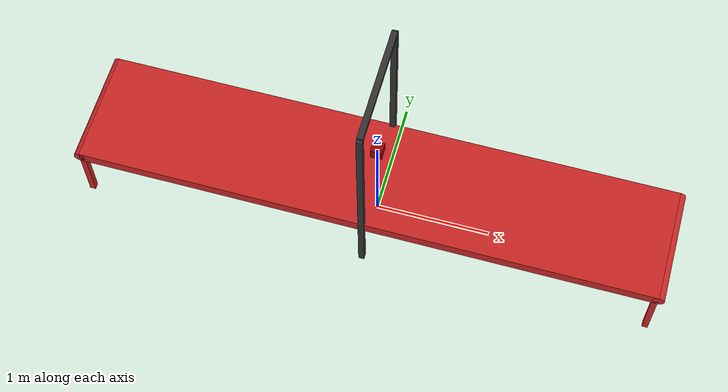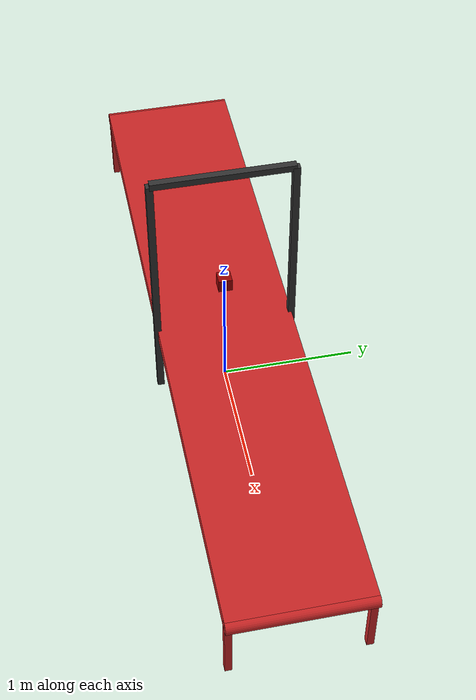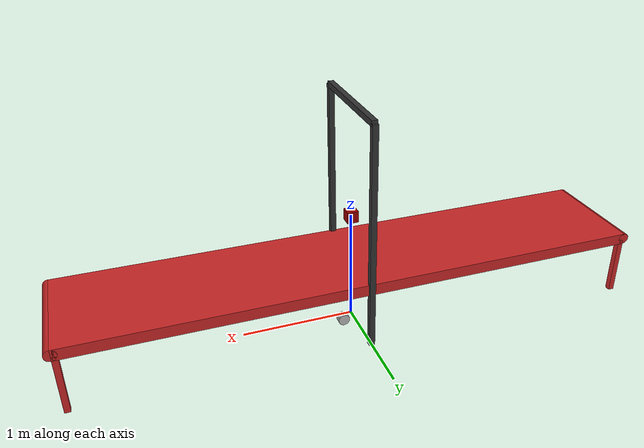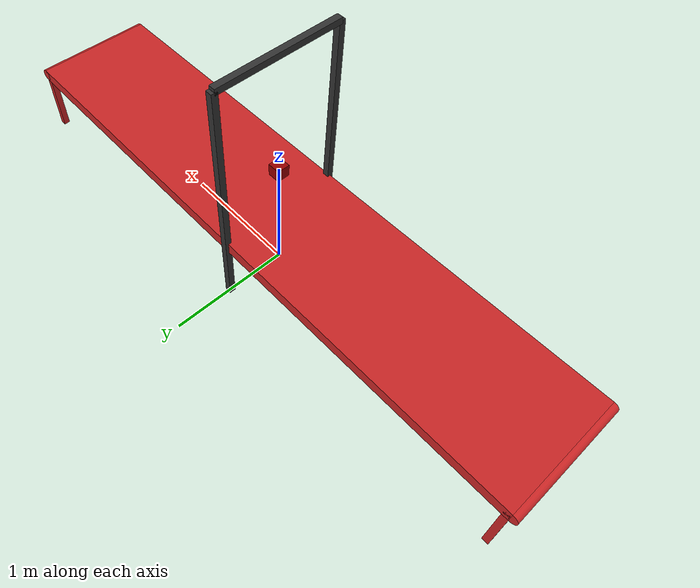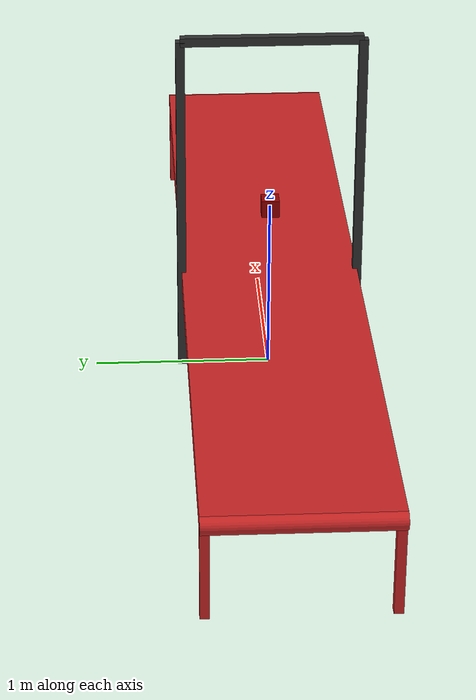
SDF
<sdf version="1.7">
 <world name="default">
  <physics name="4ms" type="ignored">
   <max_step_size>0.004</max_step_size>
   <real_time_factor>1.0</real_time_factor>
  </physics>
  <plugin filename="gz-sim-physics-system" name="gz::sim::systems::Physics"/>
  <plugin filename="gz-sim-sensors-system" name="gz::sim::systems::Sensors">
   <render_engine>ogre</render_engine>
  </plugin>
  <plugin filename="gz-sim-user-commands-system" name="gz::sim::systems::UserCommands"/>
  <plugin filename="gz-sim-scene-broadcaster-system" name="gz::sim::systems::SceneBroadcaster"/>
  <scene><ambient>1.0 1.0 1.0</ambient><background>0.8 0.8 0.8</background></scene>
  <light type="directional" name="sun">
   <pose>0 0 10 0 0 0</pose>
   <diffuse>0.8 0.8 0.8 1</diffuse>
   <specular>0.8 0.8 0.8 1</specular>
   <attenuation>
    <range>1000</range>
    <constant>0.9</constant>
    <linear>0.01</linear>
    <quadratic>0.001</quadratic>
   </attenuation>
   <direction>-0.5 0.1 -0.9</direction>
  </light>
  <include><uri>model://textured_conveyor</uri></include>
  <include><uri>model://simple_conveyor_box</uri><pose>0 0 1.0 0 0 0</pose></include>
  <include>
   <uri>model://bracket</uri>
   <name>bracket</name>
   <pose>0 0 0.0 0 0 1.5707963267948966</pose>
   <static>true</static>
  </include>
  <joint name="bracket_camera_joint" type="fixed">
   <parent>bracket::horizontal_bar</parent>
   <child>realsense_d435::link</child>
  </joint>
  <include>
   <uri>model://lidar_3d</uri>
   <name>lidar_3d</name>
   <pose relative_to="bracket::horizontal_bar">0.1 0.1 0 1.5707963267948966 0 0</pose>
   <static>false</static>
  </include>
  <joint name="bracket_lidar_joint" type="fixed">
   <parent>bracket::horizontal_bar</parent>
   <child>lidar_3d::link</child>
  </joint>
 </world>
</sdf>

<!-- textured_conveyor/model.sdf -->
<?xml version="1.0" ?>
<sdf version="1.7">
  <model name="textured_conveyor">
    <static>1</static>
    <link name="base_link">
      <pose relative_to="__model__">0 0 0 0 0 0</pose>
      <inertial>
        <mass>1000.0</mass>
        <inertia>
          <ixx>84.16666666666666</ixx>
          <ixy>0</ixy>
          <ixz>0</ixz>
          <iyy>2084.1666666666665</iyy>
          <iyz>1.5e-05</iyz>
          <izz>2166.6666666666665</izz>
        </inertia>
      </inertial>
      <collision name="main_collision">
        <pose relative_to="base_link">0 0 0.55 0 0 0</pose>
        <geometry>
          <box>
            <size>5.0 1.0 0.1</size>
          </box>
        </geometry>
        <surface>
          <friction>
            <ode>
              <mu>0.7</mu>
              <mu2>150</mu2>
              <fdir1>0 1 0</fdir1>
            </ode>
          </friction>
        </surface>
      </collision>
      <visual name="main_visual">
        <pose relative_to="base_link">0 0 0.55 0 0 0</pose>
        <geometry>
          <box>
            <size>5.0 1.0 0.1</size>
          </box>
        </geometry>
        <material>
          <diffuse>1.0 1.0 1.0</diffuse>
          <specular>1.0 1.0 1.0</specular>
          <pbr>
            <metal>
              <albedo_map>model://textured_conveyor/materials/textures/Leather032_1K-PNG_Color.png</albedo_map>
              <normal_map>model://textured_conveyor/materials/textures/Leather032_1K-PNG_NormalDX.png</normal_map>
              <metalness_map>model://textured_conveyor/materials/textures/Leather032_1K-PNG_Color.png</metalness_map>
              <roughness_map>model://textured_conveyor/materials/textures/Leather032_1K-PNG_Roughness.png</roughness_map>
            </metal>
          </pbr>
          <script>
            <uri>model://textured_conveyor/materials/scripts/</uri>
            <uri>model://textured_conveyor/materials/textures/</uri>
            <name>UrbanTile/textured_conveyor_Belt</name>
          </script>
        </material>
      </visual>
      <collision name="collision_1">
        <pose relative_to="base_link">2.5 0 0.55 -1.570796327 0 0</pose>
        <geometry>
          <cylinder>
            <length>1.0</length>
            <radius>0.05</radius>
          </cylinder>
        </geometry>
        <surface>
          <friction>
            <ode>
              <mu>0.7</mu>
              <mu2>150</mu2>
              <fdir1>0 1 0</fdir1>
            </ode>
          </friction>
        </surface>
      </collision>
      <visual name="visual_1">
        <pose relative_to="base_link">2.5 0 0.55 -1.570796327 0 0</pose>
        <geometry>
          <cylinder>
            <length>1.0</length>
            <radius>0.05</radius>
          </cylinder>
        </geometry>
        <material>
          <diffuse>1.0 1.0 1.0</diffuse>
          <specular>1.0 1.0 1.0</specular>
          <pbr>
            <metal>
              <albedo_map>model://textured_conveyor/materials/textures/Metal055A_1K-PNG_Color.png</albedo_map>
              <metalness_map>model://textured_conveyor/materials/textures/Metal055A_1K-PNG_Color.png</metalness_map>
              <roughness_map>model://textured_conveyor/materials/textures/Metal055A_1K-PNG_Roughness.png</roughness_map>
            </metal>
          </pbr>
          <script>
            <uri>model://textured_conveyor/materials/scripts/</uri>
            <uri>model://textured_conveyor/materials/textures/</uri>
            <name>UrbanTile/textured_conveyor_Roller</name>
          </script>
        </material>
      </visual>
      <collision name="collision_2">
        <pose relative_to="base_link">-2.5 0 0.55 -1.570796327 0 0</pose>
        <geometry>
          <cylinder>
            <length>1.0</length>
            <radius>0.05</radius>
          </cylinder>
        </geometry>
        <surface>
          <friction>
            <ode>
              <mu>0.7</mu>
              <mu2>150</mu2>
              <fdir1>0 1 0</fdir1>
            </ode>
          </friction>
        </surface>
      </collision>
      <visual name="visual_2">
        <pose relative_to="base_link">-2.5 0 0.55 -1.570796327 0 0</pose>
        <geometry>
          <cylinder>
            <length>1.0</length>
            <radius>0.05</radius>
          </cylinder>
        </geometry>
        <material>
          <diffuse>1.0 1.0 1.0</diffuse>
          <specular>1.0 1.0 1.0</specular>
          <pbr>
            <metal>
              <albedo_map>model://textured_conveyor/materials/textures/Metal055A_1K-PNG_Color.png</albedo_map>
              <metalness_map>model://textured_conveyor/materials/textures/Metal055A_1K-PNG_Color.png</metalness_map>
              <roughness_map>model://textured_conveyor/materials/textures/Metal055A_1K-PNG_Roughness.png</roughness_map>
            </metal>
          </pbr>
          <script>
            <uri>model://textured_conveyor/materials/scripts/</uri>
            <uri>model://textured_conveyor/materials/textures/</uri>
            <name>UrbanTile/textured_conveyor_Roller</name>
          </script>
        </material>
      </visual>
      <collision name="leg_collision_0">
        <pose relative_to="base_link">2.475 0.475 0.25 0 0 0</pose>
        <geometry>
          <box>
            <size>0.05 0.05 0.5</size>
          </box>
        </geometry>
      </collision>
      <visual name="leg_visual_0">
        <pose relative_to="base_link">2.475 0.475 0.25 0 0 0</pose>
        <geometry>
          <box>
            <size>0.05 0.05 0.5</size>
          </box>
        </geometry>
        <material>
          <diffuse>1.0 1.0 1.0</diffuse>
          <specular>1.0 1.0 1.0</specular>
          <pbr>
            <metal>
              <albedo_map>model://textured_conveyor/materials/textures/Metal055A_1K-PNG_Color.png</albedo_map>
              <metalness_map>model://textured_conveyor/materials/textures/Metal055A_1K-PNG_Color.png</metalness_map>
              <roughness_map>model://textured_conveyor/materials/textures/Metal055A_1K-PNG_Roughness.png</roughness_map>
            </metal>
          </pbr>
          <script>
            <uri>model://textured_conveyor/materials/scripts/</uri>
            <uri>model://textured_conveyor/materials/textures/</uri>
            <name>UrbanTile/textured_conveyor_Leg</name>
          </script>
        </material>
      </visual>
      <collision name="leg_collision_1">
        <pose relative_to="base_link">2.475 -0.475 0.25 0 0 0</pose>
        <geometry>
          <box>
            <size>0.05 0.05 0.5</size>
          </box>
        </geometry>
      </collision>
      <visual name="leg_visual_1">
        <pose relative_to="base_link">2.475 -0.475 0.25 0 0 0</pose>
        <geometry>
          <box>
            <size>0.05 0.05 0.5</size>
          </box>
        </geometry>
        <material>
          <diffuse>1.0 1.0 1.0</diffuse>
          <specular>1.0 1.0 1.0</specular>
          <pbr>
            <metal>
              <albedo_map>model://textured_conveyor/materials/textures/Metal055A_1K-PNG_Color.png</albedo_map>
              <metalness_map>model://textured_conveyor/materials/textures/Metal055A_1K-PNG_Color.png</metalness_map>
              <roughness_map>model://textured_conveyor/materials/textures/Metal055A_1K-PNG_Roughness.png</roughness_map>
            </metal>
          </pbr>
          <script>
            <uri>model://textured_conveyor/materials/scripts/</uri>
            <uri>model://textured_conveyor/materials/textures/</uri>
            <name>UrbanTile/textured_conveyor_Leg</name>
          </script>
        </material>
      </visual>
      <collision name="leg_collision_2">
        <pose relative_to="base_link">-2.475 0.475 0.25 0 0 0</pose>
        <geometry>
          <box>
            <size>0.05 0.05 0.5</size>
          </box>
        </geometry>
      </collision>
      <visual name="leg_visual_2">
        <pose relative_to="base_link">-2.475 0.475 0.25 0 0 0</pose>
        <geometry>
          <box>
            <size>0.05 0.05 0.5</size>
          </box>
        </geometry>
        <material>
          <diffuse>1.0 1.0 1.0</diffuse>
          <specular>1.0 1.0 1.0</specular>
          <pbr>
            <metal>
              <albedo_map>model://textured_conveyor/materials/textures/Metal055A_1K-PNG_Color.png</albedo_map>
              <metalness_map>model://textured_conveyor/materials/textures/Metal055A_1K-PNG_Color.png</metalness_map>
              <roughness_map>model://textured_conveyor/materials/textures/Metal055A_1K-PNG_Roughness.png</roughness_map>
            </metal>
          </pbr>
          <script>
            <uri>model://textured_conveyor/materials/scripts/</uri>
            <uri>model://textured_conveyor/materials/textures/</uri>
            <name>UrbanTile/textured_conveyor_Leg</name>
          </script>
        </material>
      </visual>
      <collision name="leg_collision_3">
        <pose relative_to="base_link">-2.475 -0.475 0.25 0 0 0</pose>
        <geometry>
          <box>
            <size>0.05 0.05 0.5</size>
          </box>
        </geometry>
      </collision>
      <visual name="leg_visual_3">
        <pose relative_to="base_link">-2.475 -0.475 0.25 0 0 0</pose>
        <geometry>
          <box>
            <size>0.05 0.05 0.5</size>
          </box>
        </geometry>
        <material>
          <diffuse>1.0 1.0 1.0</diffuse>
          <specular>1.0 1.0 1.0</specular>
          <pbr>
            <metal>
              <albedo_map>model://textured_conveyor/materials/textures/Metal055A_1K-PNG_Color.png</albedo_map>
              <metalness_map>model://textured_conveyor/materials/textures/Metal055A_1K-PNG_Color.png</metalness_map>
              <roughness_map>model://textured_conveyor/materials/textures/Metal055A_1K-PNG_Roughness.png</roughness_map>
            </metal>
          </pbr>
          <script>
            <uri>model://textured_conveyor/materials/scripts/</uri>
            <uri>model://textured_conveyor/materials/textures/</uri>
            <name>UrbanTile/textured_conveyor_Leg</name>
          </script>
        </material>
      </visual>
      <gravity>1</gravity>
      <kinematic>0</kinematic>
    </link>

    <!-- Track Controller -->

    <!-- Documentation https://gazebosim.org/api/sim/8/classgz_1_1sim_1_1systems_1_1TrackController.html -->

    <plugin filename="gz-sim-track-controller-system" name="gz::sim::systems::TrackController">
      <link>base_link</link>
      <track_orientation>0 0 0</track_orientation>
      <odometry_publish_frequency>1</odometry_publish_frequency>
      <velocity_topic>/conveyor/cmd_vel</velocity_topic>
    </plugin>
    <plugin filename="gz-sim-triggered-publisher-system" name="gz::sim::systems::TriggeredPublisher">
      <input type="gz.msgs.Int32" topic="/keyboard/keypress">
        <match field="data">87</match>
      </input>
      <output type="gz.msgs.Double" topic="/conveyor/cmd_vel">
        data: 1.0
      </output>
    </plugin>
    <plugin filename="gz-sim-triggered-publisher-system" name="gz::sim::systems::TriggeredPublisher">
      <input type="gz.msgs.Int32" topic="/keyboard/keypress">
        <match field="data">88</match>
      </input>
      <output type="gz.msgs.Double" topic="/conveyor/cmd_vel">
        data: -1.0
      </output>
    </plugin>
    <plugin filename="gz-sim-triggered-publisher-system" name="gz::sim::systems::TriggeredPublisher">
      <input type="gz.msgs.Int32" topic="/keyboard/keypress">
        <match field="data">83</match>
      </input>
      <output type="gz.msgs.Double" topic="/conveyor/cmd_vel">
        data: 0.0
      </output>
    </plugin>
  </model>
</sdf>

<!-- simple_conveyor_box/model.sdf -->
<sdf version="1.7">
  <model name="simple_conveyor_box">
    <pose>0 0 1 0 0 0</pose>
    <link name="base_link">
      <inertial>
        <mass>1.06</mass>
        <inertia>
          <ixx>0.01</ixx>
          <ixy>0</ixy>
          <ixz>0</ixz>
          <iyy>0.01</iyy>
          <iyz>0</iyz>
          <izz>0.01</izz>
        </inertia>
      </inertial>
      <visual name="main_visual">
        <pose>0 0 0 0 0 0</pose>
        <geometry>
          <box>
            <size>0.1 0.1 0.1</size>
          </box>
        </geometry>
        <material>
          <ambient>0.60 0.0 0.0 1</ambient>
          <diffuse>0.60 0.0 0.0 1</diffuse>
          <specular>0.8 0.8 0.8 1</specular>
        </material>
      </visual>
      <collision name="main_collision">
        <pose>0 0 0 0 0 0</pose>
        <geometry>
          <box>
            <size>0.1 0.1 0.1</size>
          </box>
        </geometry>
      </collision>
    </link>
  </model>
</sdf>

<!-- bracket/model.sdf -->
<sdf version="1.7">
  <model name="bracket">
    <!-- Horizontal connecting bar (now the parent) -->
    <link name="horizontal_bar">
      <pose>0 0 2.0 0 0 0</pose>
      <visual name="horizontal_bar_visual">
        <geometry>
          <box>
            <size>1.0 0.05 0.05</size>
          </box>
        </geometry>
        <material>
          <ambient>0.1 0.1 0.1 1</ambient>
          <diffuse>0.2 0.2 0.2 1</diffuse>
          <specular>0.3 0.3 0.3 1</specular>
        </material>
      </visual>
      <collision name="horizontal_bar_collision">
        <geometry>
          <box>
            <size>1.0 0.05 0.05</size>
          </box>
        </geometry>
      </collision>
      <inertial>
        <mass>0.5</mass>
        <inertia>
          <ixx>0.00104</ixx>
          <iyy>0.0417</iyy>
          <izz>0.0417</izz>
          <ixy>0</ixy>
          <ixz>0</ixz>
          <iyz>0</iyz>
        </inertia>
      </inertial>
    </link>

    <!-- Left vertical bar -->
    <link name="left_bar">
      <pose>-0.5 0 1.0 0 0 0</pose>
      <visual name="left_bar_visual">
        <geometry>
          <box>
            <size>0.05 0.05 2.0</size>
          </box>
        </geometry>
        <material>
          <ambient>0.1 0.1 0.1 1</ambient>
          <diffuse>0.2 0.2 0.2 1</diffuse>
          <specular>0.3 0.3 0.3 1</specular>
        </material>
      </visual>
      <collision name="left_bar_collision">
        <geometry>
          <box>
            <size>0.05 0.05 2.0</size>
          </box>
        </geometry>
      </collision>
      <inertial>
        <mass>1.0</mass>
        <inertia>
          <ixx>0.335</ixx>
          <iyy>0.335</iyy>
          <izz>0.00208</izz>
          <ixy>0</ixy>
          <ixz>0</ixz>
          <iyz>0</iyz>
        </inertia>
      </inertial>
    </link>

    <!-- Right vertical bar -->
    <link name="right_bar">
      <pose>0.5 0 1.0 0 0 0</pose>
      <visual name="right_bar_visual">
        <geometry>
          <box>
            <size>0.05 0.05 2.0</size>
          </box>
        </geometry>
        <material>
          <ambient>0.1 0.1 0.1 1</ambient>
          <diffuse>0.2 0.2 0.2 1</diffuse>
          <specular>0.3 0.3 0.3 1</specular>
        </material>
      </visual>
      <collision name="right_bar_collision">
        <geometry>
          <box>
            <size>0.05 0.05 2.0</size>
          </box>
        </geometry>
      </collision>
      <inertial>
        <mass>1.0</mass>
        <inertia>
          <ixx>0.335</ixx>
          <iyy>0.335</iyy>
          <izz>0.00208</izz>
          <ixy>0</ixy>
          <ixz>0</ixz>
          <iyz>0</iyz>
        </inertia>
      </inertial>
    </link>

    <!-- Joint between horizontal bar and left bar -->
    <joint name="horizontal_to_left_joint" type="fixed">
      <parent>horizontal_bar</parent>
      <child>left_bar</child>
      <pose>0 0 -1.0 0 0 0</pose>
    </joint>

    <!-- Joint between horizontal bar and right bar -->
    <joint name="horizontal_to_right_joint" type="fixed">
      <parent>horizontal_bar</parent>
      <child>right_bar</child>
      <pose>0 0 -1.0 0 0 0</pose>
    </joint>
  </model>
</sdf>

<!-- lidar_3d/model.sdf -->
<sdf version="1.6">
  <model name="lidar_3d">
    <link name="link">
      <pose>0 0 0 0 0 0</pose>
      <inertial>
        <pose>0 0 0.03585 0 0 0</pose>
        <mass>0.83</mass>
        <inertia>
          <ixx>0.0009080594249999999</ixx>
          <ixy>0</ixy>
          <ixz>0</ixz>
          <iyy>0.0009080594249999999</iyy>
          <iyz>0</iyz>
          <izz>0.0011049624</izz>
        </inertia>
      </inertial>
      <collision name="collision">
        <pose>0 0 0.03585 0 0 0</pose>
        <geometry>
          <cylinder>
            <radius>0.0516</radius>
            <length>0.0717</length>
          </cylinder>
        </geometry>
      </collision>
      <visual name="visual">
        <geometry>
          <mesh>
            <uri>model://lidar_3d/meshes/lidar_3d_v1.dae</uri>
          </mesh>
        </geometry>
      </visual>

      <sensor name='gpu_lidar' type='gpu_lidar'>"
        <topic>lidar</topic>
        <update_rate>10</update_rate>
        <enable_metrics>true</enable_metrics>
        <ray>
          <scan>
            <horizontal>
              <samples>720</samples>
              <resolution>0.01</resolution>
              <min_angle>-3.14159</min_angle>
              <max_angle>3.14159</max_angle>
            </horizontal>
            <vertical>
              <samples>50</samples>
              <min_angle>-0.122173</min_angle>
              <max_angle>0.907571</max_angle>
              <resolution>0.01</resolution>
            </vertical>
          </scan>
          <range>
            <min>0.08</min>
            <max>250.0</max>
            <resolution>0.01</resolution>
          </range>
        </ray>
        <visualize>true</visualize>
      </sensor>

    </link>
  </model>
</sdf>
